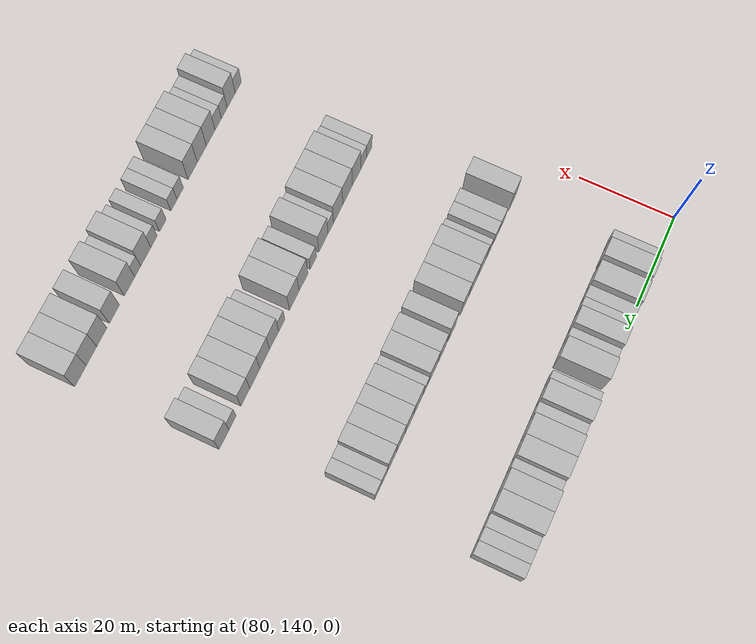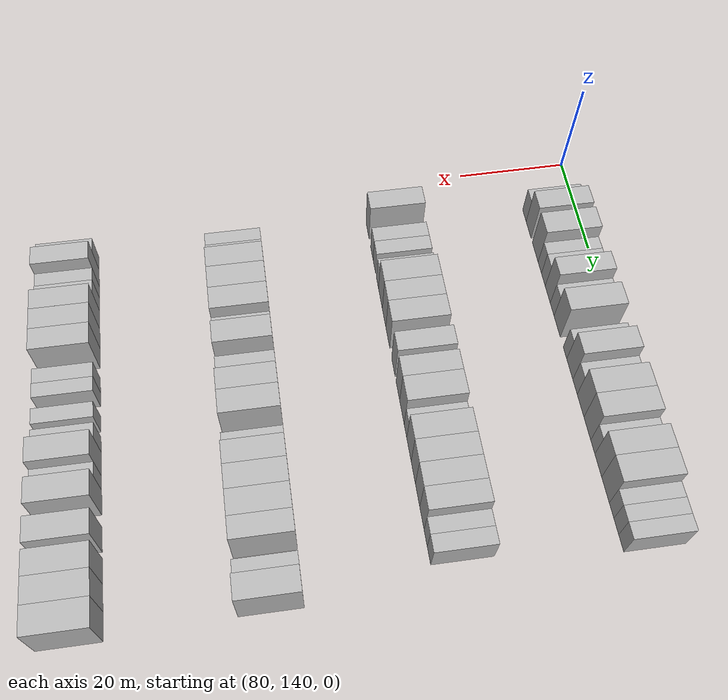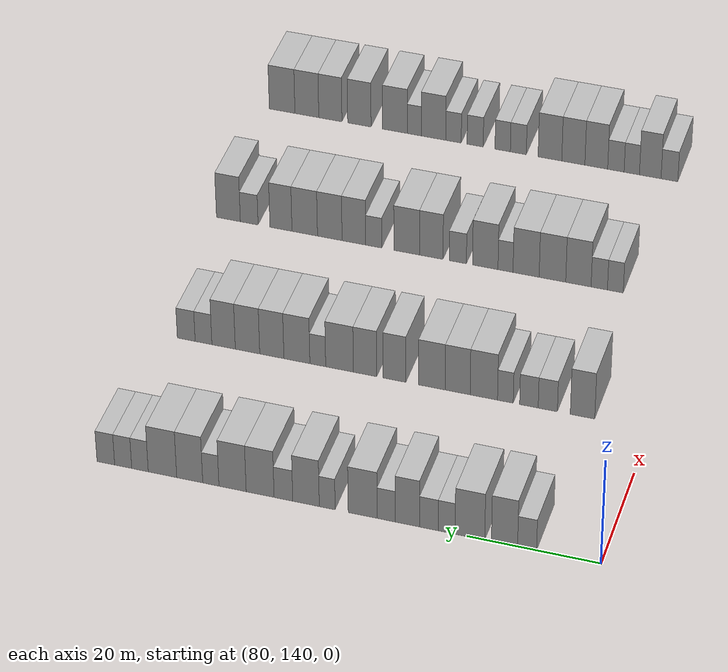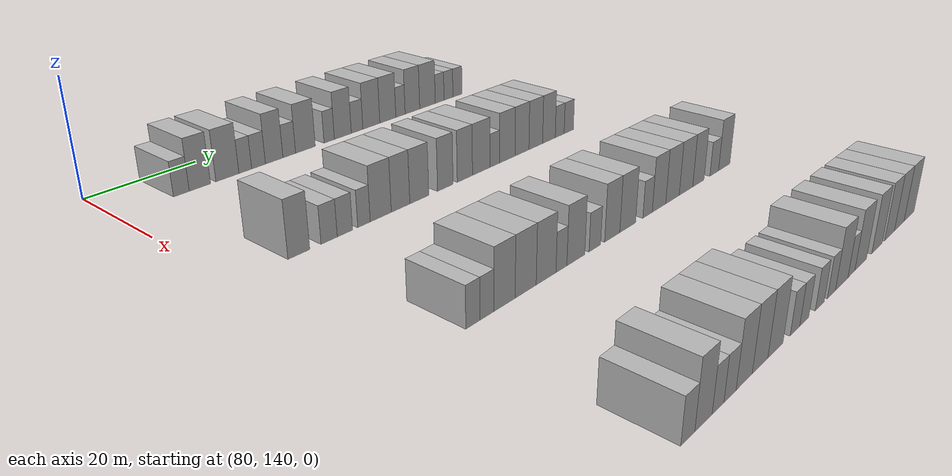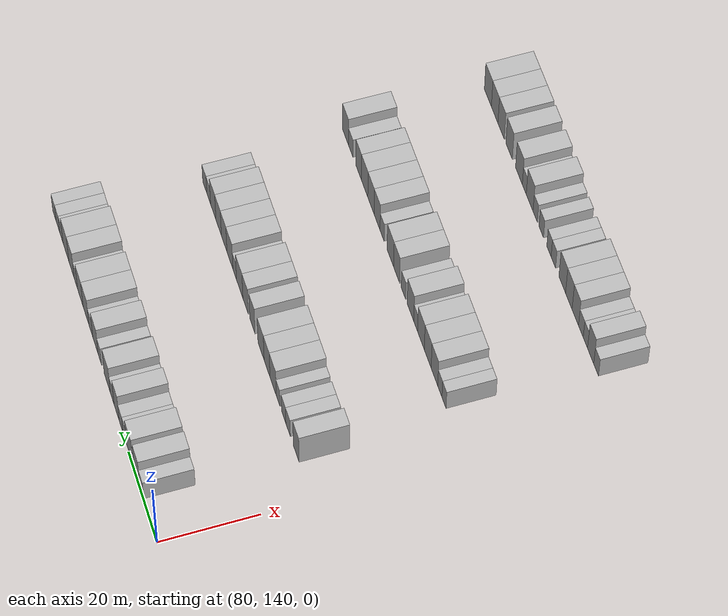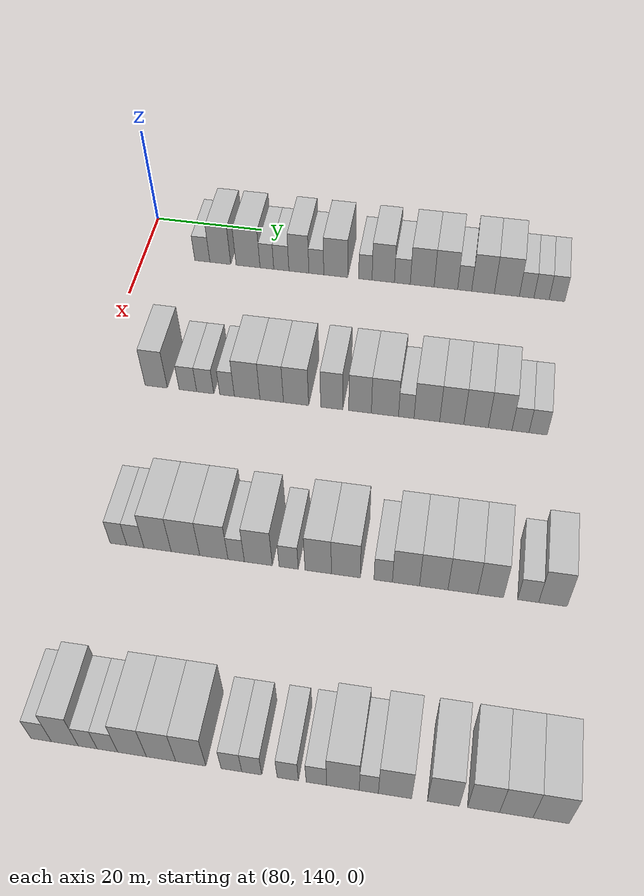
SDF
<sdf version="1.6">
 <world name="default">
  <model name="building_593">
   <static>1</static>
   <pose>85.0000 151.0304 0 0.000000 0.000000 0.000000</pose>
   <link name="link">
    <pose>0 0 3.00 0 0 0</pose>
    <collision name="collision"><geometry><box><size>10.0000 2.8254 6.0000</size></box></geometry></collision>
    <visual name="visual">
     <cast_shadows>0</cast_shadows>
     <geometry><box><size>10.0000 2.8254 6.0000</size></box></geometry>
     <material>
      <script>
       <uri>model://HANNAS_wall/materials/scripts</uri>
       <uri>model://HANNAS_wall/materials/textures</uri>
       <name>vrc/HANNAS_wall</name>
      </script>
     </material>
    </visual>
   </link>
  </model>
  <model name="building_594">
   <static>1</static>
   <pose>85.0000 154.3951 0 0.000000 0.000000 0.000000</pose>
   <link name="link">
    <pose>0 0 4.50 0 0 0</pose>
    <collision name="collision"><geometry><box><size>10.0000 3.9040 9.0000</size></box></geometry></collision>
    <visual name="visual">
     <cast_shadows>0</cast_shadows>
     <geometry><box><size>10.0000 3.9040 9.0000</size></box></geometry>
     <material>
      <script>
       <uri>model://HANNAS_wall/materials/scripts</uri>
       <uri>model://HANNAS_wall/materials/textures</uri>
       <name>vrc/HANNAS_wall</name>
      </script>
     </material>
    </visual>
   </link>
  </model>
  <model name="building_595">
   <static>1</static>
   <pose>85.0000 159.5701 0 0.000000 0.000000 0.000000</pose>
   <link name="link">
    <pose>0 0 4.50 0 0 0</pose>
    <collision name="collision"><geometry><box><size>10.0000 4.4459 9.0000</size></box></geometry></collision>
    <visual name="visual">
     <cast_shadows>0</cast_shadows>
     <geometry><box><size>10.0000 4.4459 9.0000</size></box></geometry>
     <material>
      <script>
       <uri>model://HANNAS_wall/materials/scripts</uri>
       <uri>model://HANNAS_wall/materials/textures</uri>
       <name>vrc/HANNAS_wall</name>
      </script>
     </material>
    </visual>
   </link>
  </model>
  <model name="building_596">
   <static>1</static>
   <pose>85.0000 163.0660 0 0.000000 0.000000 0.000000</pose>
   <link name="link">
    <pose>0 0 3.00 0 0 0</pose>
    <collision name="collision"><geometry><box><size>10.0000 2.5460 6.0000</size></box></geometry></collision>
    <visual name="visual">
     <cast_shadows>0</cast_shadows>
     <geometry><box><size>10.0000 2.5460 6.0000</size></box></geometry>
     <material>
      <script>
       <uri>model://HANNAS_wall/materials/scripts</uri>
       <uri>model://HANNAS_wall/materials/textures</uri>
       <name>vrc/HANNAS_wall</name>
      </script>
     </material>
    </visual>
   </link>
  </model>
  <model name="building_597">
   <static>1</static>
   <pose>85.0000 165.7440 0 0.000000 0.000000 0.000000</pose>
   <link name="link">
    <pose>0 0 3.00 0 0 0</pose>
    <collision name="collision"><geometry><box><size>10.0000 2.8100 6.0000</size></box></geometry></collision>
    <visual name="visual">
     <cast_shadows>0</cast_shadows>
     <geometry><box><size>10.0000 2.8100 6.0000</size></box></geometry>
     <material>
      <script>
       <uri>model://HANNAS_wall/materials/scripts</uri>
       <uri>model://HANNAS_wall/materials/textures</uri>
       <name>vrc/HANNAS_wall</name>
      </script>
     </material>
    </visual>
   </link>
  </model>
  <model name="building_598">
   <static>1</static>
   <pose>85.0000 168.9917 0 0.000000 0.000000 0.000000</pose>
   <link name="link">
    <pose>0 0 4.50 0 0 0</pose>
    <collision name="collision"><geometry><box><size>10.0000 3.6854 9.0000</size></box></geometry></collision>
    <visual name="visual">
     <cast_shadows>0</cast_shadows>
     <geometry><box><size>10.0000 3.6854 9.0000</size></box></geometry>
     <material>
      <script>
       <uri>model://HANNAS_wall/materials/scripts</uri>
       <uri>model://HANNAS_wall/materials/textures</uri>
       <name>vrc/HANNAS_wall</name>
      </script>
     </material>
    </visual>
   </link>
  </model>
  <model name="building_599">
   <static>1</static>
   <pose>85.0000 172.2006 0 0.000000 0.000000 0.000000</pose>
   <link name="link">
    <pose>0 0 3.00 0 0 0</pose>
    <collision name="collision"><geometry><box><size>10.0000 2.7323 6.0000</size></box></geometry></collision>
    <visual name="visual">
     <cast_shadows>0</cast_shadows>
     <geometry><box><size>10.0000 2.7323 6.0000</size></box></geometry>
     <material>
      <script>
       <uri>model://HANNAS_wall/materials/scripts</uri>
       <uri>model://HANNAS_wall/materials/textures</uri>
       <name>vrc/HANNAS_wall</name>
      </script>
     </material>
    </visual>
   </link>
  </model>
  <model name="building_600">
   <static>1</static>
   <pose>85.0000 175.7642 0 0.000000 0.000000 0.000000</pose>
   <link name="link">
    <pose>0 0 4.50 0 0 0</pose>
    <collision name="collision"><geometry><box><size>10.0000 4.3949 9.0000</size></box></geometry></collision>
    <visual name="visual">
     <cast_shadows>0</cast_shadows>
     <geometry><box><size>10.0000 4.3949 9.0000</size></box></geometry>
     <material>
      <script>
       <uri>model://HANNAS_wall/materials/scripts</uri>
       <uri>model://HANNAS_wall/materials/textures</uri>
       <name>vrc/HANNAS_wall</name>
      </script>
     </material>
    </visual>
   </link>
  </model>
  <model name="building_601">
   <static>1</static>
   <pose>85.0000 181.1709 0 0.000000 0.000000 0.000000</pose>
   <link name="link">
    <pose>0 0 3.00 0 0 0</pose>
    <collision name="collision"><geometry><box><size>10.0000 2.4184 6.0000</size></box></geometry></collision>
    <visual name="visual">
     <cast_shadows>0</cast_shadows>
     <geometry><box><size>10.0000 2.4184 6.0000</size></box></geometry>
     <material>
      <script>
       <uri>model://HANNAS_wall/materials/scripts</uri>
       <uri>model://HANNAS_wall/materials/textures</uri>
       <name>vrc/HANNAS_wall</name>
      </script>
     </material>
    </visual>
   </link>
  </model>
  <model name="building_602">
   <static>1</static>
   <pose>85.0000 184.4104 0 0.000000 0.000000 0.000000</pose>
   <link name="link">
    <pose>0 0 4.50 0 0 0</pose>
    <collision name="collision"><geometry><box><size>10.0000 4.0607 9.0000</size></box></geometry></collision>
    <visual name="visual">
     <cast_shadows>0</cast_shadows>
     <geometry><box><size>10.0000 4.0607 9.0000</size></box></geometry>
     <material>
      <script>
       <uri>model://HANNAS_wall/materials/scripts</uri>
       <uri>model://HANNAS_wall/materials/textures</uri>
       <name>vrc/HANNAS_wall</name>
      </script>
     </material>
    </visual>
   </link>
  </model>
  <model name="building_603">
   <static>1</static>
   <pose>85.0000 187.8729 0 0.000000 0.000000 0.000000</pose>
   <link name="link">
    <pose>0 0 3.00 0 0 0</pose>
    <collision name="collision"><geometry><box><size>10.0000 2.8642 6.0000</size></box></geometry></collision>
    <visual name="visual">
     <cast_shadows>0</cast_shadows>
     <geometry><box><size>10.0000 2.8642 6.0000</size></box></geometry>
     <material>
      <script>
       <uri>model://HANNAS_wall/materials/scripts</uri>
       <uri>model://HANNAS_wall/materials/textures</uri>
       <name>vrc/HANNAS_wall</name>
      </script>
     </material>
    </visual>
   </link>
  </model>
  <model name="building_604">
   <static>1</static>
   <pose>85.0000 191.4565 0 0.000000 0.000000 0.000000</pose>
   <link name="link">
    <pose>0 0 4.50 0 0 0</pose>
    <collision name="collision"><geometry><box><size>10.0000 4.3029 9.0000</size></box></geometry></collision>
    <visual name="visual">
     <cast_shadows>0</cast_shadows>
     <geometry><box><size>10.0000 4.3029 9.0000</size></box></geometry>
     <material>
      <script>
       <uri>model://HANNAS_wall/materials/scripts</uri>
       <uri>model://HANNAS_wall/materials/textures</uri>
       <name>vrc/HANNAS_wall</name>
      </script>
     </material>
    </visual>
   </link>
  </model>
  <model name="building_605">
   <static>1</static>
   <pose>85.0000 195.7152 0 0.000000 0.000000 0.000000</pose>
   <link name="link">
    <pose>0 0 4.50 0 0 0</pose>
    <collision name="collision"><geometry><box><size>10.0000 4.2146 9.0000</size></box></geometry></collision>
    <visual name="visual">
     <cast_shadows>0</cast_shadows>
     <geometry><box><size>10.0000 4.2146 9.0000</size></box></geometry>
     <material>
      <script>
       <uri>model://HANNAS_wall/materials/scripts</uri>
       <uri>model://HANNAS_wall/materials/textures</uri>
       <name>vrc/HANNAS_wall</name>
      </script>
     </material>
    </visual>
   </link>
  </model>
  <model name="building_606">
   <static>1</static>
   <pose>85.0000 199.0767 0 0.000000 0.000000 0.000000</pose>
   <link name="link">
    <pose>0 0 3.00 0 0 0</pose>
    <collision name="collision"><geometry><box><size>10.0000 2.5084 6.0000</size></box></geometry></collision>
    <visual name="visual">
     <cast_shadows>0</cast_shadows>
     <geometry><box><size>10.0000 2.5084 6.0000</size></box></geometry>
     <material>
      <script>
       <uri>model://HANNAS_wall/materials/scripts</uri>
       <uri>model://HANNAS_wall/materials/textures</uri>
       <name>vrc/HANNAS_wall</name>
      </script>
     </material>
    </visual>
   </link>
  </model>
  <model name="building_607">
   <static>1</static>
   <pose>85.0000 202.3521 0 0.000000 0.000000 0.000000</pose>
   <link name="link">
    <pose>0 0 4.50 0 0 0</pose>
    <collision name="collision"><geometry><box><size>10.0000 4.0423 9.0000</size></box></geometry></collision>
    <visual name="visual">
     <cast_shadows>0</cast_shadows>
     <geometry><box><size>10.0000 4.0423 9.0000</size></box></geometry>
     <material>
      <script>
       <uri>model://HANNAS_wall/materials/scripts</uri>
       <uri>model://HANNAS_wall/materials/textures</uri>
       <name>vrc/HANNAS_wall</name>
      </script>
     </material>
    </visual>
   </link>
  </model>
  <model name="building_608">
   <static>1</static>
   <pose>85.0000 206.5946 0 0.000000 0.000000 0.000000</pose>
   <link name="link">
    <pose>0 0 4.50 0 0 0</pose>
    <collision name="collision"><geometry><box><size>10.0000 4.4428 9.0000</size></box></geometry></collision>
    <visual name="visual">
     <cast_shadows>0</cast_shadows>
     <geometry><box><size>10.0000 4.4428 9.0000</size></box></geometry>
     <material>
      <script>
       <uri>model://HANNAS_wall/materials/scripts</uri>
       <uri>model://HANNAS_wall/materials/textures</uri>
       <name>vrc/HANNAS_wall</name>
      </script>
     </material>
    </visual>
   </link>
  </model>
  <model name="building_609">
   <static>1</static>
   <pose>85.0000 210.1084 0 0.000000 0.000000 0.000000</pose>
   <link name="link">
    <pose>0 0 3.00 0 0 0</pose>
    <collision name="collision"><geometry><box><size>10.0000 2.5848 6.0000</size></box></geometry></collision>
    <visual name="visual">
     <cast_shadows>0</cast_shadows>
     <geometry><box><size>10.0000 2.5848 6.0000</size></box></geometry>
     <material>
      <script>
       <uri>model://HANNAS_wall/materials/scripts</uri>
       <uri>model://HANNAS_wall/materials/textures</uri>
       <name>vrc/HANNAS_wall</name>
      </script>
     </material>
    </visual>
   </link>
  </model>
  <model name="building_610">
   <static>1</static>
   <pose>85.0000 212.7378 0 0.000000 0.000000 0.000000</pose>
   <link name="link">
    <pose>0 0 3.00 0 0 0</pose>
    <collision name="collision"><geometry><box><size>10.0000 2.6741 6.0000</size></box></geometry></collision>
    <visual name="visual">
     <cast_shadows>0</cast_shadows>
     <geometry><box><size>10.0000 2.6741 6.0000</size></box></geometry>
     <material>
      <script>
       <uri>model://HANNAS_wall/materials/scripts</uri>
       <uri>model://HANNAS_wall/materials/textures</uri>
       <name>vrc/HANNAS_wall</name>
      </script>
     </material>
    </visual>
   </link>
  </model>
  <model name="building_611">
   <static>1</static>
   <pose>85.0000 215.4591 0 0.000000 0.000000 0.000000</pose>
   <link name="link">
    <pose>0 0 3.00 0 0 0</pose>
    <collision name="collision"><geometry><box><size>10.0000 2.7687 6.0000</size></box></geometry></collision>
    <visual name="visual">
     <cast_shadows>0</cast_shadows>
     <geometry><box><size>10.0000 2.7687 6.0000</size></box></geometry>
     <material>
      <script>
       <uri>model://HANNAS_wall/materials/scripts</uri>
       <uri>model://HANNAS_wall/materials/textures</uri>
       <name>vrc/HANNAS_wall</name>
      </script>
     </material>
    </visual>
   </link>
  </model>
  <model name="building_832">
   <static>1</static>
   <pose>115.0000 150.4791 0 0.000000 0.000000 0.000000</pose>
   <link name="link">
    <pose>0 0 4.50 0 0 0</pose>
    <collision name="collision"><geometry><box><size>10.0000 3.7845 9.0000</size></box></geometry></collision>
    <visual name="visual">
     <cast_shadows>0</cast_shadows>
     <geometry><box><size>10.0000 3.7845 9.0000</size></box></geometry>
     <material>
      <script>
       <uri>model://HANNAS_wall/materials/scripts</uri>
       <uri>model://HANNAS_wall/materials/textures</uri>
       <name>vrc/HANNAS_wall</name>
      </script>
     </material>
    </visual>
   </link>
  </model>
  <model name="building_833">
   <static>1</static>
   <pose>115.0000 155.8626 0 0.000000 0.000000 0.000000</pose>
   <link name="link">
    <pose>0 0 3.00 0 0 0</pose>
    <collision name="collision"><geometry><box><size>10.0000 2.9823 6.0000</size></box></geometry></collision>
    <visual name="visual">
     <cast_shadows>0</cast_shadows>
     <geometry><box><size>10.0000 2.9823 6.0000</size></box></geometry>
     <material>
      <script>
       <uri>model://HANNAS_wall/materials/scripts</uri>
       <uri>model://HANNAS_wall/materials/textures</uri>
       <name>vrc/HANNAS_wall</name>
      </script>
     </material>
    </visual>
   </link>
  </model>
  <model name="building_834">
   <static>1</static>
   <pose>115.0000 158.7993 0 0.000000 0.000000 0.000000</pose>
   <link name="link">
    <pose>0 0 3.00 0 0 0</pose>
    <collision name="collision"><geometry><box><size>10.0000 2.8912 6.0000</size></box></geometry></collision>
    <visual name="visual">
     <cast_shadows>0</cast_shadows>
     <geometry><box><size>10.0000 2.8912 6.0000</size></box></geometry>
     <material>
      <script>
       <uri>model://HANNAS_wall/materials/scripts</uri>
       <uri>model://HANNAS_wall/materials/textures</uri>
       <name>vrc/HANNAS_wall</name>
      </script>
     </material>
    </visual>
   </link>
  </model>
  <model name="building_835">
   <static>1</static>
   <pose>115.0000 162.4735 0 0.000000 0.000000 0.000000</pose>
   <link name="link">
    <pose>0 0 3.00 0 0 0</pose>
    <collision name="collision"><geometry><box><size>10.0000 2.4574 6.0000</size></box></geometry></collision>
    <visual name="visual">
     <cast_shadows>0</cast_shadows>
     <geometry><box><size>10.0000 2.4574 6.0000</size></box></geometry>
     <material>
      <script>
       <uri>model://HANNAS_wall/materials/scripts</uri>
       <uri>model://HANNAS_wall/materials/textures</uri>
       <name>vrc/HANNAS_wall</name>
      </script>
     </material>
    </visual>
   </link>
  </model>
  <model name="building_836">
   <static>1</static>
   <pose>115.0000 165.8451 0 0.000000 0.000000 0.000000</pose>
   <link name="link">
    <pose>0 0 4.50 0 0 0</pose>
    <collision name="collision"><geometry><box><size>10.0000 4.2858 9.0000</size></box></geometry></collision>
    <visual name="visual">
     <cast_shadows>0</cast_shadows>
     <geometry><box><size>10.0000 4.2858 9.0000</size></box></geometry>
     <material>
      <script>
       <uri>model://HANNAS_wall/materials/scripts</uri>
       <uri>model://HANNAS_wall/materials/textures</uri>
       <name>vrc/HANNAS_wall</name>
      </script>
     </material>
    </visual>
   </link>
  </model>
  <model name="building_837">
   <static>1</static>
   <pose>115.0000 169.9534 0 0.000000 0.000000 0.000000</pose>
   <link name="link">
    <pose>0 0 4.50 0 0 0</pose>
    <collision name="collision"><geometry><box><size>10.0000 3.9308 9.0000</size></box></geometry></collision>
    <visual name="visual">
     <cast_shadows>0</cast_shadows>
     <geometry><box><size>10.0000 3.9308 9.0000</size></box></geometry>
     <material>
      <script>
       <uri>model://HANNAS_wall/materials/scripts</uri>
       <uri>model://HANNAS_wall/materials/textures</uri>
       <name>vrc/HANNAS_wall</name>
      </script>
     </material>
    </visual>
   </link>
  </model>
  <model name="building_838">
   <static>1</static>
   <pose>115.0000 174.0108 0 0.000000 0.000000 0.000000</pose>
   <link name="link">
    <pose>0 0 4.50 0 0 0</pose>
    <collision name="collision"><geometry><box><size>10.0000 4.1839 9.0000</size></box></geometry></collision>
    <visual name="visual">
     <cast_shadows>0</cast_shadows>
     <geometry><box><size>10.0000 4.1839 9.0000</size></box></geometry>
     <material>
      <script>
       <uri>model://HANNAS_wall/materials/scripts</uri>
       <uri>model://HANNAS_wall/materials/textures</uri>
       <name>vrc/HANNAS_wall</name>
      </script>
     </material>
    </visual>
   </link>
  </model>
  <model name="building_839">
   <static>1</static>
   <pose>115.0000 179.9148 0 0.000000 0.000000 0.000000</pose>
   <link name="link">
    <pose>0 0 4.50 0 0 0</pose>
    <collision name="collision"><geometry><box><size>10.0000 3.6242 9.0000</size></box></geometry></collision>
    <visual name="visual">
     <cast_shadows>0</cast_shadows>
     <geometry><box><size>10.0000 3.6242 9.0000</size></box></geometry>
     <material>
      <script>
       <uri>model://HANNAS_wall/materials/scripts</uri>
       <uri>model://HANNAS_wall/materials/textures</uri>
       <name>vrc/HANNAS_wall</name>
      </script>
     </material>
    </visual>
   </link>
  </model>
  <model name="building_840">
   <static>1</static>
   <pose>115.0000 184.5829 0 0.000000 0.000000 0.000000</pose>
   <link name="link">
    <pose>0 0 4.50 0 0 0</pose>
    <collision name="collision"><geometry><box><size>10.0000 3.7120 9.0000</size></box></geometry></collision>
    <visual name="visual">
     <cast_shadows>0</cast_shadows>
     <geometry><box><size>10.0000 3.7120 9.0000</size></box></geometry>
     <material>
      <script>
       <uri>model://HANNAS_wall/materials/scripts</uri>
       <uri>model://HANNAS_wall/materials/textures</uri>
       <name>vrc/HANNAS_wall</name>
      </script>
     </material>
    </visual>
   </link>
  </model>
  <model name="building_841">
   <static>1</static>
   <pose>115.0000 188.6526 0 0.000000 0.000000 0.000000</pose>
   <link name="link">
    <pose>0 0 4.50 0 0 0</pose>
    <collision name="collision"><geometry><box><size>10.0000 4.4275 9.0000</size></box></geometry></collision>
    <visual name="visual">
     <cast_shadows>0</cast_shadows>
     <geometry><box><size>10.0000 4.4275 9.0000</size></box></geometry>
     <material>
      <script>
       <uri>model://HANNAS_wall/materials/scripts</uri>
       <uri>model://HANNAS_wall/materials/textures</uri>
       <name>vrc/HANNAS_wall</name>
      </script>
     </material>
    </visual>
   </link>
  </model>
  <model name="building_842">
   <static>1</static>
   <pose>115.0000 192.1295 0 0.000000 0.000000 0.000000</pose>
   <link name="link">
    <pose>0 0 3.00 0 0 0</pose>
    <collision name="collision"><geometry><box><size>10.0000 2.5263 6.0000</size></box></geometry></collision>
    <visual name="visual">
     <cast_shadows>0</cast_shadows>
     <geometry><box><size>10.0000 2.5263 6.0000</size></box></geometry>
     <material>
      <script>
       <uri>model://HANNAS_wall/materials/scripts</uri>
       <uri>model://HANNAS_wall/materials/textures</uri>
       <name>vrc/HANNAS_wall</name>
      </script>
     </material>
    </visual>
   </link>
  </model>
  <model name="building_843">
   <static>1</static>
   <pose>115.0000 195.4739 0 0.000000 0.000000 0.000000</pose>
   <link name="link">
    <pose>0 0 4.50 0 0 0</pose>
    <collision name="collision"><geometry><box><size>10.0000 4.1626 9.0000</size></box></geometry></collision>
    <visual name="visual">
     <cast_shadows>0</cast_shadows>
     <geometry><box><size>10.0000 4.1626 9.0000</size></box></geometry>
     <material>
      <script>
       <uri>model://HANNAS_wall/materials/scripts</uri>
       <uri>model://HANNAS_wall/materials/textures</uri>
       <name>vrc/HANNAS_wall</name>
      </script>
     </material>
    </visual>
   </link>
  </model>
  <model name="building_844">
   <static>1</static>
   <pose>115.0000 199.5017 0 0.000000 0.000000 0.000000</pose>
   <link name="link">
    <pose>0 0 4.50 0 0 0</pose>
    <collision name="collision"><geometry><box><size>10.0000 3.8931 9.0000</size></box></geometry></collision>
    <visual name="visual">
     <cast_shadows>0</cast_shadows>
     <geometry><box><size>10.0000 3.8931 9.0000</size></box></geometry>
     <material>
      <script>
       <uri>model://HANNAS_wall/materials/scripts</uri>
       <uri>model://HANNAS_wall/materials/textures</uri>
       <name>vrc/HANNAS_wall</name>
      </script>
     </material>
    </visual>
   </link>
  </model>
  <model name="building_845">
   <static>1</static>
   <pose>115.0000 203.4168 0 0.000000 0.000000 0.000000</pose>
   <link name="link">
    <pose>0 0 4.50 0 0 0</pose>
    <collision name="collision"><geometry><box><size>10.0000 3.9370 9.0000</size></box></geometry></collision>
    <visual name="visual">
     <cast_shadows>0</cast_shadows>
     <geometry><box><size>10.0000 3.9370 9.0000</size></box></geometry>
     <material>
      <script>
       <uri>model://HANNAS_wall/materials/scripts</uri>
       <uri>model://HANNAS_wall/materials/textures</uri>
       <name>vrc/HANNAS_wall</name>
      </script>
     </material>
    </visual>
   </link>
  </model>
  <model name="building_846">
   <static>1</static>
   <pose>115.0000 207.2823 0 0.000000 0.000000 0.000000</pose>
   <link name="link">
    <pose>0 0 4.50 0 0 0</pose>
    <collision name="collision"><geometry><box><size>10.0000 3.7940 9.0000</size></box></geometry></collision>
    <visual name="visual">
     <cast_shadows>0</cast_shadows>
     <geometry><box><size>10.0000 3.7940 9.0000</size></box></geometry>
     <material>
      <script>
       <uri>model://HANNAS_wall/materials/scripts</uri>
       <uri>model://HANNAS_wall/materials/textures</uri>
       <name>vrc/HANNAS_wall</name>
      </script>
     </material>
    </visual>
   </link>
  </model>
  <model name="building_847">
   <static>1</static>
   <pose>115.0000 210.5388 0 0.000000 0.000000 0.000000</pose>
   <link name="link">
    <pose>0 0 3.00 0 0 0</pose>
    <collision name="collision"><geometry><box><size>10.0000 2.7190 6.0000</size></box></geometry></collision>
    <visual name="visual">
     <cast_shadows>0</cast_shadows>
     <geometry><box><size>10.0000 2.7190 6.0000</size></box></geometry>
     <material>
      <script>
       <uri>model://HANNAS_wall/materials/scripts</uri>
       <uri>model://HANNAS_wall/materials/textures</uri>
       <name>vrc/HANNAS_wall</name>
      </script>
     </material>
    </visual>
   </link>
  </model>
  <model name="building_848">
   <static>1</static>
   <pose>115.0000 213.3465 0 0.000000 0.000000 0.000000</pose>
   <link name="link">
    <pose>0 0 3.00 0 0 0</pose>
    <collision name="collision"><geometry><box><size>10.0000 2.8962 6.0000</size></box></geometry></collision>
    <visual name="visual">
     <cast_shadows>0</cast_shadows>
     <geometry><box><size>10.0000 2.8962 6.0000</size></box></geometry>
     <material>
      <script>
       <uri>model://HANNAS_wall/materials/scripts</uri>
       <uri>model://HANNAS_wall/materials/textures</uri>
       <name>vrc/HANNAS_wall</name>
      </script>
     </material>
    </visual>
   </link>
  </model>
  <model name="building_1059">
   <static>1</static>
   <pose>145.0000 152.8604 0 0.000000 0.000000 0.000000</pose>
   <link name="link">
    <pose>0 0 3.00 0 0 0</pose>
    <collision name="collision"><geometry><box><size>10.0000 2.5489 6.0000</size></box></geometry></collision>
    <visual name="visual">
     <cast_shadows>0</cast_shadows>
     <geometry><box><size>10.0000 2.5489 6.0000</size></box></geometry>
     <material>
      <script>
       <uri>model://HANNAS_wall/materials/scripts</uri>
       <uri>model://HANNAS_wall/materials/textures</uri>
       <name>vrc/HANNAS_wall</name>
      </script>
     </material>
    </visual>
   </link>
  </model>
  <model name="building_1060">
   <static>1</static>
   <pose>145.0000 155.4501 0 0.000000 0.000000 0.000000</pose>
   <link name="link">
    <pose>0 0 3.00 0 0 0</pose>
    <collision name="collision"><geometry><box><size>10.0000 2.6305 6.0000</size></box></geometry></collision>
    <visual name="visual">
     <cast_shadows>0</cast_shadows>
     <geometry><box><size>10.0000 2.6305 6.0000</size></box></geometry>
     <material>
      <script>
       <uri>model://HANNAS_wall/materials/scripts</uri>
       <uri>model://HANNAS_wall/materials/textures</uri>
       <name>vrc/HANNAS_wall</name>
      </script>
     </material>
    </visual>
   </link>
  </model>
  <model name="building_1061">
   <static>1</static>
   <pose>145.0000 158.8184 0 0.000000 0.000000 0.000000</pose>
   <link name="link">
    <pose>0 0 4.50 0 0 0</pose>
    <collision name="collision"><geometry><box><size>10.0000 4.1061 9.0000</size></box></geometry></collision>
    <visual name="visual">
     <cast_shadows>0</cast_shadows>
     <geometry><box><size>10.0000 4.1061 9.0000</size></box></geometry>
     <material>
      <script>
       <uri>model://HANNAS_wall/materials/scripts</uri>
       <uri>model://HANNAS_wall/materials/textures</uri>
       <name>vrc/HANNAS_wall</name>
      </script>
     </material>
    </visual>
   </link>
  </model>
  <model name="building_1062">
   <static>1</static>
   <pose>145.0000 163.0261 0 0.000000 0.000000 0.000000</pose>
   <link name="link">
    <pose>0 0 4.50 0 0 0</pose>
    <collision name="collision"><geometry><box><size>10.0000 4.3093 9.0000</size></box></geometry></collision>
    <visual name="visual">
     <cast_shadows>0</cast_shadows>
     <geometry><box><size>10.0000 4.3093 9.0000</size></box></geometry>
     <material>
      <script>
       <uri>model://HANNAS_wall/materials/scripts</uri>
       <uri>model://HANNAS_wall/materials/textures</uri>
       <name>vrc/HANNAS_wall</name>
      </script>
     </material>
    </visual>
   </link>
  </model>
  <model name="building_1063">
   <static>1</static>
   <pose>145.0000 167.3072 0 0.000000 0.000000 0.000000</pose>
   <link name="link">
    <pose>0 0 4.50 0 0 0</pose>
    <collision name="collision"><geometry><box><size>10.0000 4.2529 9.0000</size></box></geometry></collision>
    <visual name="visual">
     <cast_shadows>0</cast_shadows>
     <geometry><box><size>10.0000 4.2529 9.0000</size></box></geometry>
     <material>
      <script>
       <uri>model://HANNAS_wall/materials/scripts</uri>
       <uri>model://HANNAS_wall/materials/textures</uri>
       <name>vrc/HANNAS_wall</name>
      </script>
     </material>
    </visual>
   </link>
  </model>
  <model name="building_1064">
   <static>1</static>
   <pose>145.0000 170.6579 0 0.000000 0.000000 0.000000</pose>
   <link name="link">
    <pose>0 0 3.00 0 0 0</pose>
    <collision name="collision"><geometry><box><size>10.0000 2.4485 6.0000</size></box></geometry></collision>
    <visual name="visual">
     <cast_shadows>0</cast_shadows>
     <geometry><box><size>10.0000 2.4485 6.0000</size></box></geometry>
     <material>
      <script>
       <uri>model://HANNAS_wall/materials/scripts</uri>
       <uri>model://HANNAS_wall/materials/textures</uri>
       <name>vrc/HANNAS_wall</name>
      </script>
     </material>
    </visual>
   </link>
  </model>
  <model name="building_1065">
   <static>1</static>
   <pose>145.0000 173.9628 0 0.000000 0.000000 0.000000</pose>
   <link name="link">
    <pose>0 0 4.50 0 0 0</pose>
    <collision name="collision"><geometry><box><size>10.0000 4.1613 9.0000</size></box></geometry></collision>
    <visual name="visual">
     <cast_shadows>0</cast_shadows>
     <geometry><box><size>10.0000 4.1613 9.0000</size></box></geometry>
     <material>
      <script>
       <uri>model://HANNAS_wall/materials/scripts</uri>
       <uri>model://HANNAS_wall/materials/textures</uri>
       <name>vrc/HANNAS_wall</name>
      </script>
     </material>
    </visual>
   </link>
  </model>
  <model name="building_1066">
   <static>1</static>
   <pose>145.0000 178.4620 0 0.000000 0.000000 0.000000</pose>
   <link name="link">
    <pose>0 0 3.00 0 0 0</pose>
    <collision name="collision"><geometry><box><size>10.0000 2.8371 6.0000</size></box></geometry></collision>
    <visual name="visual">
     <cast_shadows>0</cast_shadows>
     <geometry><box><size>10.0000 2.8371 6.0000</size></box></geometry>
     <material>
      <script>
       <uri>model://HANNAS_wall/materials/scripts</uri>
       <uri>model://HANNAS_wall/materials/textures</uri>
       <name>vrc/HANNAS_wall</name>
      </script>
     </material>
    </visual>
   </link>
  </model>
  <model name="building_1067">
   <static>1</static>
   <pose>145.0000 182.8238 0 0.000000 0.000000 0.000000</pose>
   <link name="link">
    <pose>0 0 4.50 0 0 0</pose>
    <collision name="collision"><geometry><box><size>10.0000 3.8866 9.0000</size></box></geometry></collision>
    <visual name="visual">
     <cast_shadows>0</cast_shadows>
     <geometry><box><size>10.0000 3.8866 9.0000</size></box></geometry>
     <material>
      <script>
       <uri>model://HANNAS_wall/materials/scripts</uri>
       <uri>model://HANNAS_wall/materials/textures</uri>
       <name>vrc/HANNAS_wall</name>
      </script>
     </material>
    </visual>
   </link>
  </model>
  <model name="building_1068">
   <static>1</static>
   <pose>145.0000 186.8799 0 0.000000 0.000000 0.000000</pose>
   <link name="link">
    <pose>0 0 4.50 0 0 0</pose>
    <collision name="collision"><geometry><box><size>10.0000 4.2255 9.0000</size></box></geometry></collision>
    <visual name="visual">
     <cast_shadows>0</cast_shadows>
     <geometry><box><size>10.0000 4.2255 9.0000</size></box></geometry>
     <material>
      <script>
       <uri>model://HANNAS_wall/materials/scripts</uri>
       <uri>model://HANNAS_wall/materials/textures</uri>
       <name>vrc/HANNAS_wall</name>
      </script>
     </material>
    </visual>
   </link>
  </model>
  <model name="building_1069">
   <static>1</static>
   <pose>145.0000 192.3269 0 0.000000 0.000000 0.000000</pose>
   <link name="link">
    <pose>0 0 3.00 0 0 0</pose>
    <collision name="collision"><geometry><box><size>10.0000 2.6685 6.0000</size></box></geometry></collision>
    <visual name="visual">
     <cast_shadows>0</cast_shadows>
     <geometry><box><size>10.0000 2.6685 6.0000</size></box></geometry>
     <material>
      <script>
       <uri>model://HANNAS_wall/materials/scripts</uri>
       <uri>model://HANNAS_wall/materials/textures</uri>
       <name>vrc/HANNAS_wall</name>
      </script>
     </material>
    </visual>
   </link>
  </model>
  <model name="building_1070">
   <static>1</static>
   <pose>145.0000 195.6252 0 0.000000 0.000000 0.000000</pose>
   <link name="link">
    <pose>0 0 4.50 0 0 0</pose>
    <collision name="collision"><geometry><box><size>10.0000 3.9281 9.0000</size></box></geometry></collision>
    <visual name="visual">
     <cast_shadows>0</cast_shadows>
     <geometry><box><size>10.0000 3.9281 9.0000</size></box></geometry>
     <material>
      <script>
       <uri>model://HANNAS_wall/materials/scripts</uri>
       <uri>model://HANNAS_wall/materials/textures</uri>
       <name>vrc/HANNAS_wall</name>
      </script>
     </material>
    </visual>
   </link>
  </model>
  <model name="building_1071">
   <static>1</static>
   <pose>145.0000 199.6416 0 0.000000 0.000000 0.000000</pose>
   <link name="link">
    <pose>0 0 4.50 0 0 0</pose>
    <collision name="collision"><geometry><box><size>10.0000 4.1047 9.0000</size></box></geometry></collision>
    <visual name="visual">
     <cast_shadows>0</cast_shadows>
     <geometry><box><size>10.0000 4.1047 9.0000</size></box></geometry>
     <material>
      <script>
       <uri>model://HANNAS_wall/materials/scripts</uri>
       <uri>model://HANNAS_wall/materials/textures</uri>
       <name>vrc/HANNAS_wall</name>
      </script>
     </material>
    </visual>
   </link>
  </model>
  <model name="building_1072">
   <static>1</static>
   <pose>145.0000 203.8259 0 0.000000 0.000000 0.000000</pose>
   <link name="link">
    <pose>0 0 4.50 0 0 0</pose>
    <collision name="collision"><geometry><box><size>10.0000 4.2638 9.0000</size></box></geometry></collision>
    <visual name="visual">
     <cast_shadows>0</cast_shadows>
     <geometry><box><size>10.0000 4.2638 9.0000</size></box></geometry>
     <material>
      <script>
       <uri>model://HANNAS_wall/materials/scripts</uri>
       <uri>model://HANNAS_wall/materials/textures</uri>
       <name>vrc/HANNAS_wall</name>
      </script>
     </material>
    </visual>
   </link>
  </model>
  <model name="building_1073">
   <static>1</static>
   <pose>145.0000 207.8063 0 0.000000 0.000000 0.000000</pose>
   <link name="link">
    <pose>0 0 4.50 0 0 0</pose>
    <collision name="collision"><geometry><box><size>10.0000 3.6970 9.0000</size></box></geometry></collision>
    <visual name="visual">
     <cast_shadows>0</cast_shadows>
     <geometry><box><size>10.0000 3.6970 9.0000</size></box></geometry>
     <material>
      <script>
       <uri>model://HANNAS_wall/materials/scripts</uri>
       <uri>model://HANNAS_wall/materials/textures</uri>
       <name>vrc/HANNAS_wall</name>
      </script>
     </material>
    </visual>
   </link>
  </model>
  <model name="building_1074">
   <static>1</static>
   <pose>145.0000 213.1479 0 0.000000 0.000000 0.000000</pose>
   <link name="link">
    <pose>0 0 3.00 0 0 0</pose>
    <collision name="collision"><geometry><box><size>10.0000 2.9862 6.0000</size></box></geometry></collision>
    <visual name="visual">
     <cast_shadows>0</cast_shadows>
     <geometry><box><size>10.0000 2.9862 6.0000</size></box></geometry>
     <material>
      <script>
       <uri>model://HANNAS_wall/materials/scripts</uri>
       <uri>model://HANNAS_wall/materials/textures</uri>
       <name>vrc/HANNAS_wall</name>
      </script>
     </material>
    </visual>
   </link>
  </model>
  <model name="building_1075">
   <static>1</static>
   <pose>145.0000 216.6526 0 0.000000 0.000000 0.000000</pose>
   <link name="link">
    <pose>0 0 4.50 0 0 0</pose>
    <collision name="collision"><geometry><box><size>10.0000 4.0231 9.0000</size></box></geometry></collision>
    <visual name="visual">
     <cast_shadows>0</cast_shadows>
     <geometry><box><size>10.0000 4.0231 9.0000</size></box></geometry>
     <material>
      <script>
       <uri>model://HANNAS_wall/materials/scripts</uri>
       <uri>model://HANNAS_wall/materials/textures</uri>
       <name>vrc/HANNAS_wall</name>
      </script>
     </material>
    </visual>
   </link>
  </model>
  <model name="building_1285">
   <static>1</static>
   <pose>175.0000 151.2766 0 0.000000 0.000000 0.000000</pose>
   <link name="link">
    <pose>0 0 3.00 0 0 0</pose>
    <collision name="collision"><geometry><box><size>10.0000 2.7895 6.0000</size></box></geometry></collision>
    <visual name="visual">
     <cast_shadows>0</cast_shadows>
     <geometry><box><size>10.0000 2.7895 6.0000</size></box></geometry>
     <material>
      <script>
       <uri>model://HANNAS_wall/materials/scripts</uri>
       <uri>model://HANNAS_wall/materials/textures</uri>
       <name>vrc/HANNAS_wall</name>
      </script>
     </material>
    </visual>
   </link>
  </model>
  <model name="building_1286">
   <static>1</static>
   <pose>175.0000 154.4793 0 0.000000 0.000000 0.000000</pose>
   <link name="link">
    <pose>0 0 4.50 0 0 0</pose>
    <collision name="collision"><geometry><box><size>10.0000 3.6159 9.0000</size></box></geometry></collision>
    <visual name="visual">
     <cast_shadows>0</cast_shadows>
     <geometry><box><size>10.0000 3.6159 9.0000</size></box></geometry>
     <material>
      <script>
       <uri>model://HANNAS_wall/materials/scripts</uri>
       <uri>model://HANNAS_wall/materials/textures</uri>
       <name>vrc/HANNAS_wall</name>
      </script>
     </material>
    </visual>
   </link>
  </model>
  <model name="building_1287">
   <static>1</static>
   <pose>175.0000 157.5652 0 0.000000 0.000000 0.000000</pose>
   <link name="link">
    <pose>0 0 3.00 0 0 0</pose>
    <collision name="collision"><geometry><box><size>10.0000 2.5559 6.0000</size></box></geometry></collision>
    <visual name="visual">
     <cast_shadows>0</cast_shadows>
     <geometry><box><size>10.0000 2.5559 6.0000</size></box></geometry>
     <material>
      <script>
       <uri>model://HANNAS_wall/materials/scripts</uri>
       <uri>model://HANNAS_wall/materials/textures</uri>
       <name>vrc/HANNAS_wall</name>
      </script>
     </material>
    </visual>
   </link>
  </model>
  <model name="building_1288">
   <static>1</static>
   <pose>175.0000 160.2220 0 0.000000 0.000000 0.000000</pose>
   <link name="link">
    <pose>0 0 3.00 0 0 0</pose>
    <collision name="collision"><geometry><box><size>10.0000 2.7577 6.0000</size></box></geometry></collision>
    <visual name="visual">
     <cast_shadows>0</cast_shadows>
     <geometry><box><size>10.0000 2.7577 6.0000</size></box></geometry>
     <material>
      <script>
       <uri>model://HANNAS_wall/materials/scripts</uri>
       <uri>model://HANNAS_wall/materials/textures</uri>
       <name>vrc/HANNAS_wall</name>
      </script>
     </material>
    </visual>
   </link>
  </model>
  <model name="building_1289">
   <static>1</static>
   <pose>175.0000 163.5149 0 0.000000 0.000000 0.000000</pose>
   <link name="link">
    <pose>0 0 4.50 0 0 0</pose>
    <collision name="collision"><geometry><box><size>10.0000 3.8281 9.0000</size></box></geometry></collision>
    <visual name="visual">
     <cast_shadows>0</cast_shadows>
     <geometry><box><size>10.0000 3.8281 9.0000</size></box></geometry>
     <material>
      <script>
       <uri>model://HANNAS_wall/materials/scripts</uri>
       <uri>model://HANNAS_wall/materials/textures</uri>
       <name>vrc/HANNAS_wall</name>
      </script>
     </material>
    </visual>
   </link>
  </model>
  <model name="building_1290">
   <static>1</static>
   <pose>175.0000 167.3794 0 0.000000 0.000000 0.000000</pose>
   <link name="link">
    <pose>0 0 4.50 0 0 0</pose>
    <collision name="collision"><geometry><box><size>10.0000 3.9008 9.0000</size></box></geometry></collision>
    <visual name="visual">
     <cast_shadows>0</cast_shadows>
     <geometry><box><size>10.0000 3.9008 9.0000</size></box></geometry>
     <material>
      <script>
       <uri>model://HANNAS_wall/materials/scripts</uri>
       <uri>model://HANNAS_wall/materials/textures</uri>
       <name>vrc/HANNAS_wall</name>
      </script>
     </material>
    </visual>
   </link>
  </model>
  <model name="building_1291">
   <static>1</static>
   <pose>175.0000 171.3266 0 0.000000 0.000000 0.000000</pose>
   <link name="link">
    <pose>0 0 4.50 0 0 0</pose>
    <collision name="collision"><geometry><box><size>10.0000 3.9937 9.0000</size></box></geometry></collision>
    <visual name="visual">
     <cast_shadows>0</cast_shadows>
     <geometry><box><size>10.0000 3.9937 9.0000</size></box></geometry>
     <material>
      <script>
       <uri>model://HANNAS_wall/materials/scripts</uri>
       <uri>model://HANNAS_wall/materials/textures</uri>
       <name>vrc/HANNAS_wall</name>
      </script>
     </material>
    </visual>
   </link>
  </model>
  <model name="building_1292">
   <static>1</static>
   <pose>175.0000 176.6784 0 0.000000 0.000000 0.000000</pose>
   <link name="link">
    <pose>0 0 3.00 0 0 0</pose>
    <collision name="collision"><geometry><box><size>10.0000 2.7099 6.0000</size></box></geometry></collision>
    <visual name="visual">
     <cast_shadows>0</cast_shadows>
     <geometry><box><size>10.0000 2.7099 6.0000</size></box></geometry>
     <material>
      <script>
       <uri>model://HANNAS_wall/materials/scripts</uri>
       <uri>model://HANNAS_wall/materials/textures</uri>
       <name>vrc/HANNAS_wall</name>
      </script>
     </material>
    </visual>
   </link>
  </model>
  <model name="building_1293">
   <static>1</static>
   <pose>175.0000 179.3402 0 0.000000 0.000000 0.000000</pose>
   <link name="link">
    <pose>0 0 3.00 0 0 0</pose>
    <collision name="collision"><geometry><box><size>10.0000 2.6135 6.0000</size></box></geometry></collision>
    <visual name="visual">
     <cast_shadows>0</cast_shadows>
     <geometry><box><size>10.0000 2.6135 6.0000</size></box></geometry>
     <material>
      <script>
       <uri>model://HANNAS_wall/materials/scripts</uri>
       <uri>model://HANNAS_wall/materials/textures</uri>
       <name>vrc/HANNAS_wall</name>
      </script>
     </material>
    </visual>
   </link>
  </model>
  <model name="building_1294">
   <static>1</static>
   <pose>175.0000 184.0265 0 0.000000 0.000000 0.000000</pose>
   <link name="link">
    <pose>0 0 3.00 0 0 0</pose>
    <collision name="collision"><geometry><box><size>10.0000 2.7591 6.0000</size></box></geometry></collision>
    <visual name="visual">
     <cast_shadows>0</cast_shadows>
     <geometry><box><size>10.0000 2.7591 6.0000</size></box></geometry>
     <material>
      <script>
       <uri>model://HANNAS_wall/materials/scripts</uri>
       <uri>model://HANNAS_wall/materials/textures</uri>
       <name>vrc/HANNAS_wall</name>
      </script>
     </material>
    </visual>
   </link>
  </model>
  <model name="building_1295">
   <static>1</static>
   <pose>175.0000 187.7308 0 0.000000 0.000000 0.000000</pose>
   <link name="link">
    <pose>0 0 3.00 0 0 0</pose>
    <collision name="collision"><geometry><box><size>10.0000 2.6496 6.0000</size></box></geometry></collision>
    <visual name="visual">
     <cast_shadows>0</cast_shadows>
     <geometry><box><size>10.0000 2.6496 6.0000</size></box></geometry>
     <material>
      <script>
       <uri>model://HANNAS_wall/materials/scripts</uri>
       <uri>model://HANNAS_wall/materials/textures</uri>
       <name>vrc/HANNAS_wall</name>
      </script>
     </material>
    </visual>
   </link>
  </model>
  <model name="building_1296">
   <static>1</static>
   <pose>175.0000 191.1489 0 0.000000 0.000000 0.000000</pose>
   <link name="link">
    <pose>0 0 4.50 0 0 0</pose>
    <collision name="collision"><geometry><box><size>10.0000 4.1866 9.0000</size></box></geometry></collision>
    <visual name="visual">
     <cast_shadows>0</cast_shadows>
     <geometry><box><size>10.0000 4.1866 9.0000</size></box></geometry>
     <material>
      <script>
       <uri>model://HANNAS_wall/materials/scripts</uri>
       <uri>model://HANNAS_wall/materials/textures</uri>
       <name>vrc/HANNAS_wall</name>
      </script>
     </material>
    </visual>
   </link>
  </model>
  <model name="building_1297">
   <static>1</static>
   <pose>175.0000 194.4596 0 0.000000 0.000000 0.000000</pose>
   <link name="link">
    <pose>0 0 3.00 0 0 0</pose>
    <collision name="collision"><geometry><box><size>10.0000 2.4347 6.0000</size></box></geometry></collision>
    <visual name="visual">
     <cast_shadows>0</cast_shadows>
     <geometry><box><size>10.0000 2.4347 6.0000</size></box></geometry>
     <material>
      <script>
       <uri>model://HANNAS_wall/materials/scripts</uri>
       <uri>model://HANNAS_wall/materials/textures</uri>
       <name>vrc/HANNAS_wall</name>
      </script>
     </material>
    </visual>
   </link>
  </model>
  <model name="building_1298">
   <static>1</static>
   <pose>175.0000 197.7947 0 0.000000 0.000000 0.000000</pose>
   <link name="link">
    <pose>0 0 4.50 0 0 0</pose>
    <collision name="collision"><geometry><box><size>10.0000 4.2356 9.0000</size></box></geometry></collision>
    <visual name="visual">
     <cast_shadows>0</cast_shadows>
     <geometry><box><size>10.0000 4.2356 9.0000</size></box></geometry>
     <material>
      <script>
       <uri>model://HANNAS_wall/materials/scripts</uri>
       <uri>model://HANNAS_wall/materials/textures</uri>
       <name>vrc/HANNAS_wall</name>
      </script>
     </material>
    </visual>
   </link>
  </model>
  <model name="building_1299">
   <static>1</static>
   <pose>175.0000 203.9354 0 0.000000 0.000000 0.000000</pose>
   <link name="link">
    <pose>0 0 4.50 0 0 0</pose>
    <collision name="collision"><geometry><box><size>10.0000 4.0457 9.0000</size></box></geometry></collision>
    <visual name="visual">
     <cast_shadows>0</cast_shadows>
     <geometry><box><size>10.0000 4.0457 9.0000</size></box></geometry>
     <material>
      <script>
       <uri>model://HANNAS_wall/materials/scripts</uri>
       <uri>model://HANNAS_wall/materials/textures</uri>
       <name>vrc/HANNAS_wall</name>
      </script>
     </material>
    </visual>
   </link>
  </model>
  <model name="building_1300">
   <static>1</static>
   <pose>175.0000 208.9708 0 0.000000 0.000000 0.000000</pose>
   <link name="link">
    <pose>0 0 4.50 0 0 0</pose>
    <collision name="collision"><geometry><box><size>10.0000 4.0252 9.0000</size></box></geometry></collision>
    <visual name="visual">
     <cast_shadows>0</cast_shadows>
     <geometry><box><size>10.0000 4.0252 9.0000</size></box></geometry>
     <material>
      <script>
       <uri>model://HANNAS_wall/materials/scripts</uri>
       <uri>model://HANNAS_wall/materials/textures</uri>
       <name>vrc/HANNAS_wall</name>
      </script>
     </material>
    </visual>
   </link>
  </model>
  <model name="building_1301">
   <static>1</static>
   <pose>175.0000 213.0610 0 0.000000 0.000000 0.000000</pose>
   <link name="link">
    <pose>0 0 4.50 0 0 0</pose>
    <collision name="collision"><geometry><box><size>10.0000 4.1551 9.0000</size></box></geometry></collision>
    <visual name="visual">
     <cast_shadows>0</cast_shadows>
     <geometry><box><size>10.0000 4.1551 9.0000</size></box></geometry>
     <material>
      <script>
       <uri>model://HANNAS_wall/materials/scripts</uri>
       <uri>model://HANNAS_wall/materials/textures</uri>
       <name>vrc/HANNAS_wall</name>
      </script>
     </material>
    </visual>
   </link>
  </model>
  <model name="building_1302">
   <static>1</static>
   <pose>175.0000 217.3778 0 0.000000 0.000000 0.000000</pose>
   <link name="link">
    <pose>0 0 4.50 0 0 0</pose>
    <collision name="collision"><geometry><box><size>10.0000 4.4786 9.0000</size></box></geometry></collision>
    <visual name="visual">
     <cast_shadows>0</cast_shadows>
     <geometry><box><size>10.0000 4.4786 9.0000</size></box></geometry>
     <material>
      <script>
       <uri>model://HANNAS_wall/materials/scripts</uri>
       <uri>model://HANNAS_wall/materials/textures</uri>
       <name>vrc/HANNAS_wall</name>
      </script>
     </material>
    </visual>
   </link>
  </model>
 </world>
</sdf>
